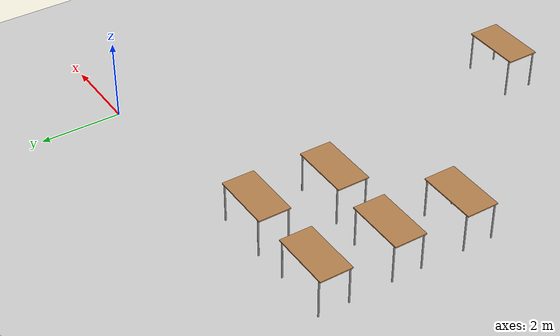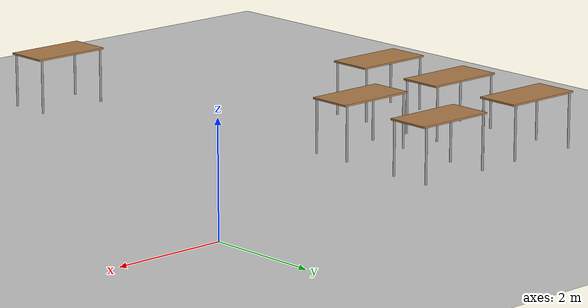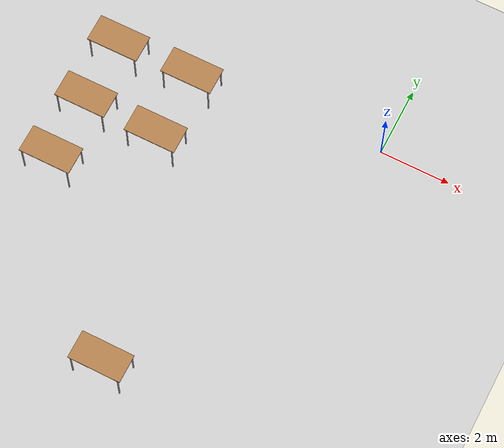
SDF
<sdf version="1.6">
 <world name="default">
  <model name="ground_plane">
   <static>1</static>
   <link name="link">
    <collision name="collision">
     <geometry><plane><normal>0 0 1</normal><size>100 100</size></plane></geometry>
     <surface>
      <contact><collide_bitmask>65535</collide_bitmask></contact>
      <friction><ode><mu>100</mu><mu2>50</mu2></ode></friction>
     </surface>
    </collision>
    <visual name="visual">
     <cast_shadows>0</cast_shadows>
     <geometry><plane><normal>0 0 1</normal><size>100 100</size></plane></geometry>
     <material>
      <script><uri>file://media/materials/scripts/gazebo.material</uri><name>Gazebo/Grey</name></script>
     </material>
    </visual>
   </link>
  </model>
  <model name="table_clone_5">
   <static>1</static>
   <link name="link">
    <collision name="surface">
     <pose>0 0 1 0 -0 0</pose>
     <geometry><box><size>1.5 0.8 0.03</size></box></geometry>
     <surface><friction><ode><mu>0.6</mu><mu2>0.6</mu2></ode></friction></surface>
    </collision>
    <visual name="visual1">
     <pose>0 0 1 0 -0 0</pose>
     <geometry><box><size>1.5 0.8 0.03</size></box></geometry>
     <material>
      <script><uri>file://media/materials/scripts/gazebo.material</uri><name>Gazebo/Wood</name></script>
     </material>
    </visual>
    <collision name="front_left_leg">
     <pose>0.68 0.38 0.5 0 -0 0</pose>
     <geometry><cylinder><radius>0.02</radius><length>1</length></cylinder></geometry>
    </collision>
    <visual name="front_left_leg">
     <pose>0.68 0.38 0.5 0 -0 0</pose>
     <geometry><cylinder><radius>0.02</radius><length>1</length></cylinder></geometry>
     <material>
      <script><uri>file://media/materials/scripts/gazebo.material</uri><name>Gazebo/Grey</name></script>
     </material>
    </visual>
    <collision name="front_right_leg">
     <pose>0.68 -0.38 0.5 0 -0 0</pose>
     <geometry><cylinder><radius>0.02</radius><length>1</length></cylinder></geometry>
    </collision>
    <visual name="front_right_leg">
     <pose>0.68 -0.38 0.5 0 -0 0</pose>
     <geometry><cylinder><radius>0.02</radius><length>1</length></cylinder></geometry>
     <material>
      <script><uri>file://media/materials/scripts/gazebo.material</uri><name>Gazebo/Grey</name></script>
     </material>
    </visual>
    <collision name="back_right_leg">
     <pose>-0.68 -0.38 0.5 0 -0 0</pose>
     <geometry><cylinder><radius>0.02</radius><length>1</length></cylinder></geometry>
    </collision>
    <visual name="back_right_leg">
     <pose>-0.68 -0.38 0.5 0 -0 0</pose>
     <geometry><cylinder><radius>0.02</radius><length>1</length></cylinder></geometry>
     <material>
      <script><uri>file://media/materials/scripts/gazebo.material</uri><name>Gazebo/Grey</name></script>
     </material>
    </visual>
    <collision name="back_left_leg">
     <pose>-0.68 0.38 0.5 0 -0 0</pose>
     <geometry><cylinder><radius>0.02</radius><length>1</length></cylinder></geometry>
    </collision>
    <visual name="back_left_leg">
     <pose>-0.68 0.38 0.5 0 -0 0</pose>
     <geometry><cylinder><radius>0.02</radius><length>1</length></cylinder></geometry>
     <material>
      <script><uri>file://media/materials/scripts/gazebo.material</uri><name>Gazebo/Grey</name></script>
     </material>
    </visual>
   </link>
   <pose>-7.64676 -0.599518 0 0 -0 0</pose>
  </model>
  <model name="table_clone_6">
   <static>1</static>
   <link name="link">
    <collision name="surface">
     <pose>0 0 1 0 -0 0</pose>
     <geometry><box><size>1.5 0.8 0.03</size></box></geometry>
     <surface><friction><ode><mu>0.6</mu><mu2>0.6</mu2></ode></friction></surface>
    </collision>
    <visual name="visual1">
     <pose>0 0 1 0 -0 0</pose>
     <geometry><box><size>1.5 0.8 0.03</size></box></geometry>
     <material>
      <script><uri>file://media/materials/scripts/gazebo.material</uri><name>Gazebo/Wood</name></script>
     </material>
    </visual>
    <collision name="front_left_leg">
     <pose>0.68 0.38 0.5 0 -0 0</pose>
     <geometry><cylinder><radius>0.02</radius><length>1</length></cylinder></geometry>
    </collision>
    <visual name="front_left_leg">
     <pose>0.68 0.38 0.5 0 -0 0</pose>
     <geometry><cylinder><radius>0.02</radius><length>1</length></cylinder></geometry>
     <material>
      <script><uri>file://media/materials/scripts/gazebo.material</uri><name>Gazebo/Grey</name></script>
     </material>
    </visual>
    <collision name="front_right_leg">
     <pose>0.68 -0.38 0.5 0 -0 0</pose>
     <geometry><cylinder><radius>0.02</radius><length>1</length></cylinder></geometry>
    </collision>
    <visual name="front_right_leg">
     <pose>0.68 -0.38 0.5 0 -0 0</pose>
     <geometry><cylinder><radius>0.02</radius><length>1</length></cylinder></geometry>
     <material>
      <script><uri>file://media/materials/scripts/gazebo.material</uri><name>Gazebo/Grey</name></script>
     </material>
    </visual>
    <collision name="back_right_leg">
     <pose>-0.68 -0.38 0.5 0 -0 0</pose>
     <geometry><cylinder><radius>0.02</radius><length>1</length></cylinder></geometry>
    </collision>
    <visual name="back_right_leg">
     <pose>-0.68 -0.38 0.5 0 -0 0</pose>
     <geometry><cylinder><radius>0.02</radius><length>1</length></cylinder></geometry>
     <material>
      <script><uri>file://media/materials/scripts/gazebo.material</uri><name>Gazebo/Grey</name></script>
     </material>
    </visual>
    <collision name="back_left_leg">
     <pose>-0.68 0.38 0.5 0 -0 0</pose>
     <geometry><cylinder><radius>0.02</radius><length>1</length></cylinder></geometry>
    </collision>
    <visual name="back_left_leg">
     <pose>-0.68 0.38 0.5 0 -0 0</pose>
     <geometry><cylinder><radius>0.02</radius><length>1</length></cylinder></geometry>
     <material>
      <script><uri>file://media/materials/scripts/gazebo.material</uri><name>Gazebo/Grey</name></script>
     </material>
    </visual>
   </link>
   <pose>-5.43569 -0.553476 0 0 -0 0</pose>
  </model>
  <model name="table_clone_7">
   <static>1</static>
   <link name="link">
    <collision name="surface">
     <pose>0 0 1 0 -0 0</pose>
     <geometry><box><size>1.5 0.8 0.03</size></box></geometry>
     <surface><friction><ode><mu>0.6</mu><mu2>0.6</mu2></ode></friction></surface>
    </collision>
    <visual name="visual1">
     <pose>0 0 1 0 -0 0</pose>
     <geometry><box><size>1.5 0.8 0.03</size></box></geometry>
     <material>
      <script><uri>file://media/materials/scripts/gazebo.material</uri><name>Gazebo/Wood</name></script>
     </material>
    </visual>
    <collision name="front_left_leg">
     <pose>0.68 0.38 0.5 0 -0 0</pose>
     <geometry><cylinder><radius>0.02</radius><length>1</length></cylinder></geometry>
    </collision>
    <visual name="front_left_leg">
     <pose>0.68 0.38 0.5 0 -0 0</pose>
     <geometry><cylinder><radius>0.02</radius><length>1</length></cylinder></geometry>
     <material>
      <script><uri>file://media/materials/scripts/gazebo.material</uri><name>Gazebo/Grey</name></script>
     </material>
    </visual>
    <collision name="front_right_leg">
     <pose>0.68 -0.38 0.5 0 -0 0</pose>
     <geometry><cylinder><radius>0.02</radius><length>1</length></cylinder></geometry>
    </collision>
    <visual name="front_right_leg">
     <pose>0.68 -0.38 0.5 0 -0 0</pose>
     <geometry><cylinder><radius>0.02</radius><length>1</length></cylinder></geometry>
     <material>
      <script><uri>file://media/materials/scripts/gazebo.material</uri><name>Gazebo/Grey</name></script>
     </material>
    </visual>
    <collision name="back_right_leg">
     <pose>-0.68 -0.38 0.5 0 -0 0</pose>
     <geometry><cylinder><radius>0.02</radius><length>1</length></cylinder></geometry>
    </collision>
    <visual name="back_right_leg">
     <pose>-0.68 -0.38 0.5 0 -0 0</pose>
     <geometry><cylinder><radius>0.02</radius><length>1</length></cylinder></geometry>
     <material>
      <script><uri>file://media/materials/scripts/gazebo.material</uri><name>Gazebo/Grey</name></script>
     </material>
    </visual>
    <collision name="back_left_leg">
     <pose>-0.68 0.38 0.5 0 -0 0</pose>
     <geometry><cylinder><radius>0.02</radius><length>1</length></cylinder></geometry>
    </collision>
    <visual name="back_left_leg">
     <pose>-0.68 0.38 0.5 0 -0 0</pose>
     <geometry><cylinder><radius>0.02</radius><length>1</length></cylinder></geometry>
     <material>
      <script><uri>file://media/materials/scripts/gazebo.material</uri><name>Gazebo/Grey</name></script>
     </material>
    </visual>
   </link>
   <pose>-5.49232 -2.52556 0 0 -0 0</pose>
  </model>
  <model name="table_clone_8">
   <static>1</static>
   <link name="link">
    <collision name="surface">
     <pose>0 0 1 0 -0 0</pose>
     <geometry><box><size>1.5 0.8 0.03</size></box></geometry>
     <surface><friction><ode><mu>0.6</mu><mu2>0.6</mu2></ode></friction></surface>
    </collision>
    <visual name="visual1">
     <pose>0 0 1 0 -0 0</pose>
     <geometry><box><size>1.5 0.8 0.03</size></box></geometry>
     <material>
      <script><uri>file://media/materials/scripts/gazebo.material</uri><name>Gazebo/Wood</name></script>
     </material>
    </visual>
    <collision name="front_left_leg">
     <pose>0.68 0.38 0.5 0 -0 0</pose>
     <geometry><cylinder><radius>0.02</radius><length>1</length></cylinder></geometry>
    </collision>
    <visual name="front_left_leg">
     <pose>0.68 0.38 0.5 0 -0 0</pose>
     <geometry><cylinder><radius>0.02</radius><length>1</length></cylinder></geometry>
     <material>
      <script><uri>file://media/materials/scripts/gazebo.material</uri><name>Gazebo/Grey</name></script>
     </material>
    </visual>
    <collision name="front_right_leg">
     <pose>0.68 -0.38 0.5 0 -0 0</pose>
     <geometry><cylinder><radius>0.02</radius><length>1</length></cylinder></geometry>
    </collision>
    <visual name="front_right_leg">
     <pose>0.68 -0.38 0.5 0 -0 0</pose>
     <geometry><cylinder><radius>0.02</radius><length>1</length></cylinder></geometry>
     <material>
      <script><uri>file://media/materials/scripts/gazebo.material</uri><name>Gazebo/Grey</name></script>
     </material>
    </visual>
    <collision name="back_right_leg">
     <pose>-0.68 -0.38 0.5 0 -0 0</pose>
     <geometry><cylinder><radius>0.02</radius><length>1</length></cylinder></geometry>
    </collision>
    <visual name="back_right_leg">
     <pose>-0.68 -0.38 0.5 0 -0 0</pose>
     <geometry><cylinder><radius>0.02</radius><length>1</length></cylinder></geometry>
     <material>
      <script><uri>file://media/materials/scripts/gazebo.material</uri><name>Gazebo/Grey</name></script>
     </material>
    </visual>
    <collision name="back_left_leg">
     <pose>-0.68 0.38 0.5 0 -0 0</pose>
     <geometry><cylinder><radius>0.02</radius><length>1</length></cylinder></geometry>
    </collision>
    <visual name="back_left_leg">
     <pose>-0.68 0.38 0.5 0 -0 0</pose>
     <geometry><cylinder><radius>0.02</radius><length>1</length></cylinder></geometry>
     <material>
      <script><uri>file://media/materials/scripts/gazebo.material</uri><name>Gazebo/Grey</name></script>
     </material>
    </visual>
   </link>
   <pose>-7.63083 -2.4627 0 0 -0 0</pose>
  </model>
  <model name="table_clone_9">
   <static>1</static>
   <link name="link">
    <collision name="surface">
     <pose>0 0 1 0 -0 0</pose>
     <geometry><box><size>1.5 0.8 0.03</size></box></geometry>
     <surface><friction><ode><mu>0.6</mu><mu2>0.6</mu2></ode></friction></surface>
    </collision>
    <visual name="visual1">
     <pose>0 0 1 0 -0 0</pose>
     <geometry><box><size>1.5 0.8 0.03</size></box></geometry>
     <material>
      <script><uri>file://media/materials/scripts/gazebo.material</uri><name>Gazebo/Wood</name></script>
     </material>
    </visual>
    <collision name="front_left_leg">
     <pose>0.68 0.38 0.5 0 -0 0</pose>
     <geometry><cylinder><radius>0.02</radius><length>1</length></cylinder></geometry>
    </collision>
    <visual name="front_left_leg">
     <pose>0.68 0.38 0.5 0 -0 0</pose>
     <geometry><cylinder><radius>0.02</radius><length>1</length></cylinder></geometry>
     <material>
      <script><uri>file://media/materials/scripts/gazebo.material</uri><name>Gazebo/Grey</name></script>
     </material>
    </visual>
    <collision name="front_right_leg">
     <pose>0.68 -0.38 0.5 0 -0 0</pose>
     <geometry><cylinder><radius>0.02</radius><length>1</length></cylinder></geometry>
    </collision>
    <visual name="front_right_leg">
     <pose>0.68 -0.38 0.5 0 -0 0</pose>
     <geometry><cylinder><radius>0.02</radius><length>1</length></cylinder></geometry>
     <material>
      <script><uri>file://media/materials/scripts/gazebo.material</uri><name>Gazebo/Grey</name></script>
     </material>
    </visual>
    <collision name="back_right_leg">
     <pose>-0.68 -0.38 0.5 0 -0 0</pose>
     <geometry><cylinder><radius>0.02</radius><length>1</length></cylinder></geometry>
    </collision>
    <visual name="back_right_leg">
     <pose>-0.68 -0.38 0.5 0 -0 0</pose>
     <geometry><cylinder><radius>0.02</radius><length>1</length></cylinder></geometry>
     <material>
      <script><uri>file://media/materials/scripts/gazebo.material</uri><name>Gazebo/Grey</name></script>
     </material>
    </visual>
    <collision name="back_left_leg">
     <pose>-0.68 0.38 0.5 0 -0 0</pose>
     <geometry><cylinder><radius>0.02</radius><length>1</length></cylinder></geometry>
    </collision>
    <visual name="back_left_leg">
     <pose>-0.68 0.38 0.5 0 -0 0</pose>
     <geometry><cylinder><radius>0.02</radius><length>1</length></cylinder></geometry>
     <material>
      <script><uri>file://media/materials/scripts/gazebo.material</uri><name>Gazebo/Grey</name></script>
     </material>
    </visual>
   </link>
   <pose>-7.68096 -4.30939 0 0 -0 0</pose>
  </model>
  <model name="table_clone_10">
   <static>1</static>
   <link name="link">
    <collision name="surface">
     <pose>0 0 1 0 -0 0</pose>
     <geometry><box><size>1.5 0.8 0.03</size></box></geometry>
     <surface><friction><ode><mu>0.6</mu><mu2>0.6</mu2></ode></friction></surface>
    </collision>
    <visual name="visual1">
     <pose>0 0 1 0 -0 0</pose>
     <geometry><box><size>1.5 0.8 0.03</size></box></geometry>
     <material>
      <script><uri>file://media/materials/scripts/gazebo.material</uri><name>Gazebo/Wood</name></script>
     </material>
    </visual>
    <collision name="front_left_leg">
     <pose>0.68 0.38 0.5 0 -0 0</pose>
     <geometry><cylinder><radius>0.02</radius><length>1</length></cylinder></geometry>
    </collision>
    <visual name="front_left_leg">
     <pose>0.68 0.38 0.5 0 -0 0</pose>
     <geometry><cylinder><radius>0.02</radius><length>1</length></cylinder></geometry>
     <material>
      <script><uri>file://media/materials/scripts/gazebo.material</uri><name>Gazebo/Grey</name></script>
     </material>
    </visual>
    <collision name="front_right_leg">
     <pose>0.68 -0.38 0.5 0 -0 0</pose>
     <geometry><cylinder><radius>0.02</radius><length>1</length></cylinder></geometry>
    </collision>
    <visual name="front_right_leg">
     <pose>0.68 -0.38 0.5 0 -0 0</pose>
     <geometry><cylinder><radius>0.02</radius><length>1</length></cylinder></geometry>
     <material>
      <script><uri>file://media/materials/scripts/gazebo.material</uri><name>Gazebo/Grey</name></script>
     </material>
    </visual>
    <collision name="back_right_leg">
     <pose>-0.68 -0.38 0.5 0 -0 0</pose>
     <geometry><cylinder><radius>0.02</radius><length>1</length></cylinder></geometry>
    </collision>
    <visual name="back_right_leg">
     <pose>-0.68 -0.38 0.5 0 -0 0</pose>
     <geometry><cylinder><radius>0.02</radius><length>1</length></cylinder></geometry>
     <material>
      <script><uri>file://media/materials/scripts/gazebo.material</uri><name>Gazebo/Grey</name></script>
     </material>
    </visual>
    <collision name="back_left_leg">
     <pose>-0.68 0.38 0.5 0 -0 0</pose>
     <geometry><cylinder><radius>0.02</radius><length>1</length></cylinder></geometry>
    </collision>
    <visual name="back_left_leg">
     <pose>-0.68 0.38 0.5 0 -0 0</pose>
     <geometry><cylinder><radius>0.02</radius><length>1</length></cylinder></geometry>
     <material>
      <script><uri>file://media/materials/scripts/gazebo.material</uri><name>Gazebo/Grey</name></script>
     </material>
    </visual>
   </link>
   <pose>-3.75888 -8.76615 0 0 -0 0</pose>
  </model>
 </world>
</sdf>
